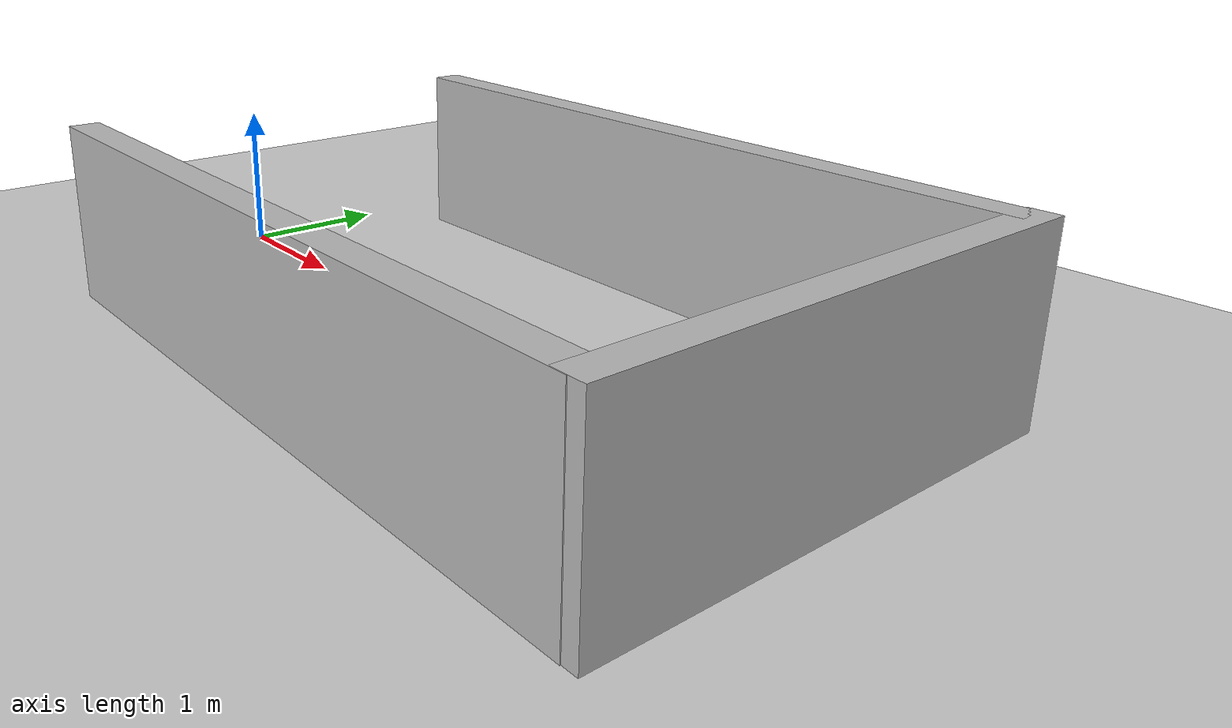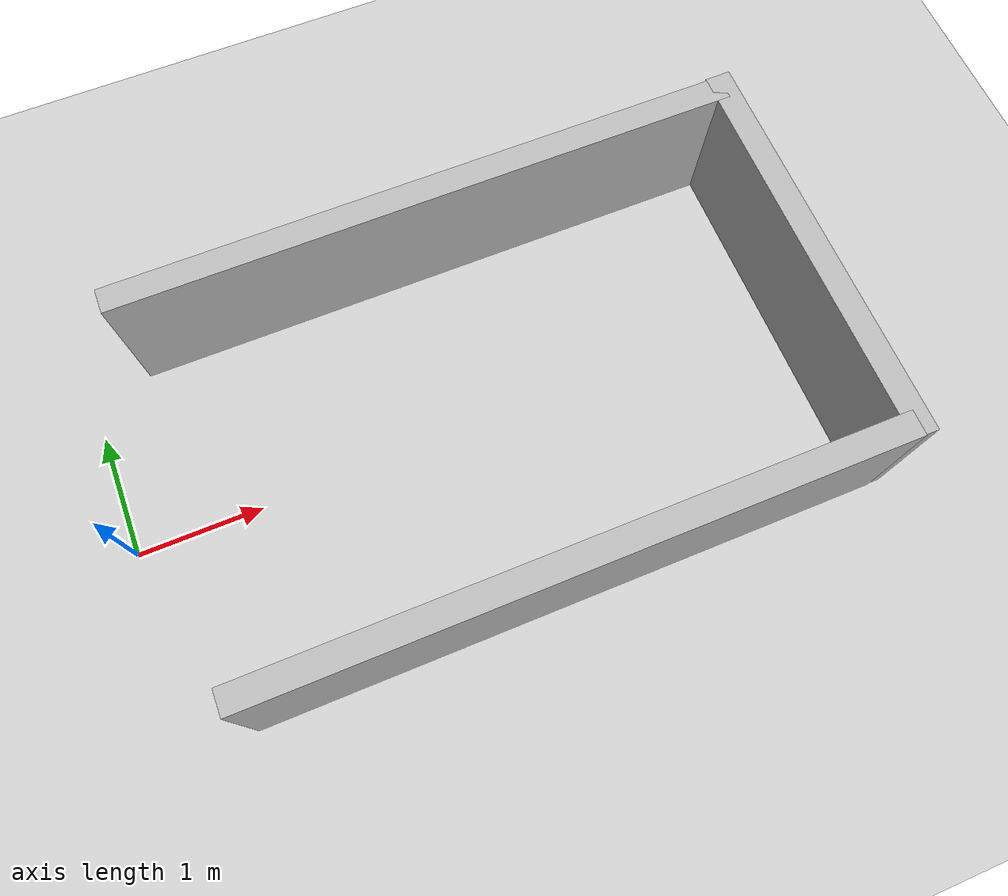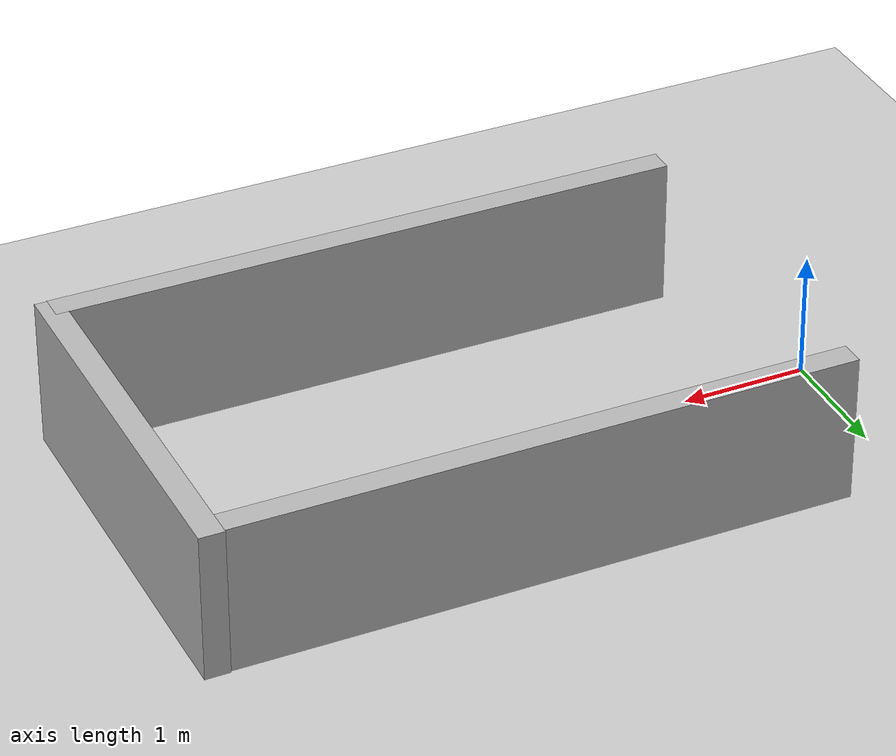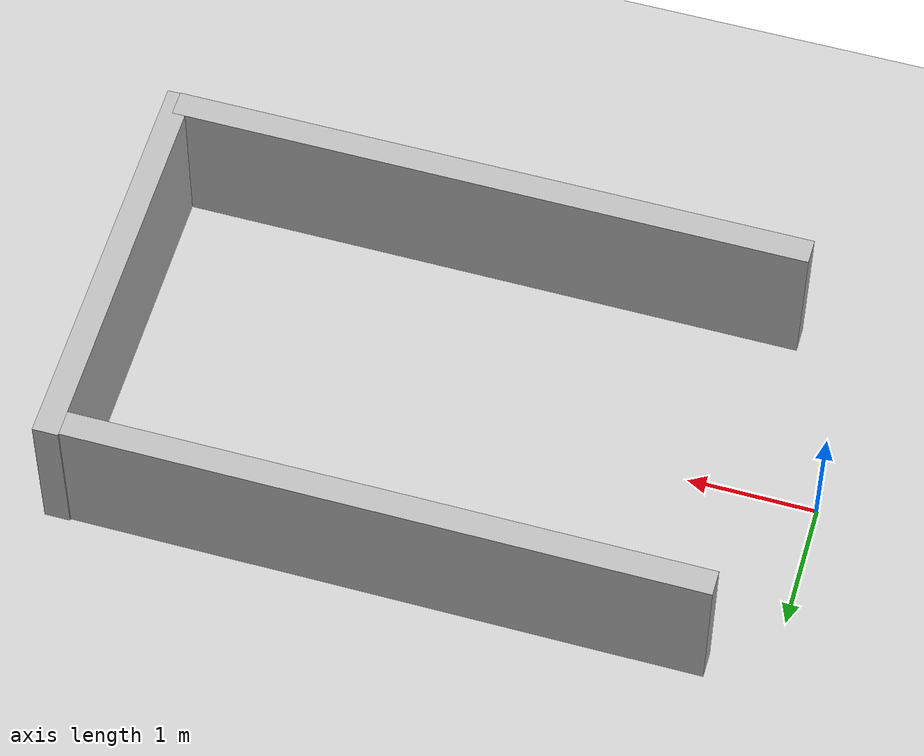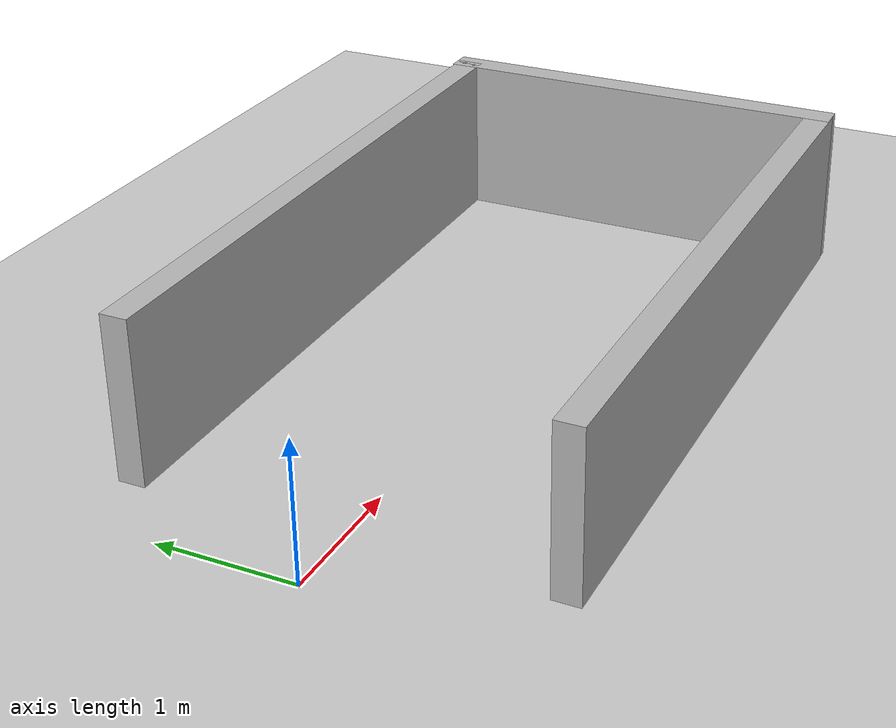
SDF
<?xml version="1.0"?>
<sdf version="1.6">
  <world name="v2-04g-r2-maneuver-s4963">
    <gravity>0 0 -9.81</gravity>
    <physics name="v2_deterministic" type="ode">
      <max_step_size>0.002</max_step_size>
      <real_time_update_rate>500</real_time_update_rate>
    </physics>
    <include>
      <uri>model://sun</uri>
    </include>
    <include>
      <uri>model://ground_plane</uri>
    </include>
    <model name="bay-left">
      <static>true</static>
      <pose>2.977974200 1.508046435 0.600000000 0 0 0.000627721</pose>
      <link name="link">
        <collision name="collision">
          <geometry>
            <box>
              <size>5.000000 0.200000 1.200000</size>
            </box>
          </geometry>
        </collision>
        <visual name="visual">
          <geometry>
            <box>
              <size>5.000000 0.200000 1.200000</size>
            </box>
          </geometry>
        </visual>
      </link>
    </model>
    <model name="bay-right">
      <static>true</static>
      <pose>2.977241012 -1.477531272 0.600000000 0 0 -0.001556684</pose>
      <link name="link">
        <collision name="collision">
          <geometry>
            <box>
              <size>5.000000 0.200000 1.200000</size>
            </box>
          </geometry>
        </collision>
        <visual name="visual">
          <geometry>
            <box>
              <size>5.000000 0.200000 1.200000</size>
            </box>
          </geometry>
        </visual>
      </link>
    </model>
    <model name="bay-back">
      <static>true</static>
      <pose>5.475236519 0.023918668 0.600000000 0 0 0.000377856</pose>
      <link name="link">
        <collision name="collision">
          <geometry>
            <box>
              <size>0.200000 3.200000 1.200000</size>
            </box>
          </geometry>
        </collision>
        <visual name="visual">
          <geometry>
            <box>
              <size>0.200000 3.200000 1.200000</size>
            </box>
          </geometry>
        </visual>
      </link>
    </model>
  </world>
</sdf>
